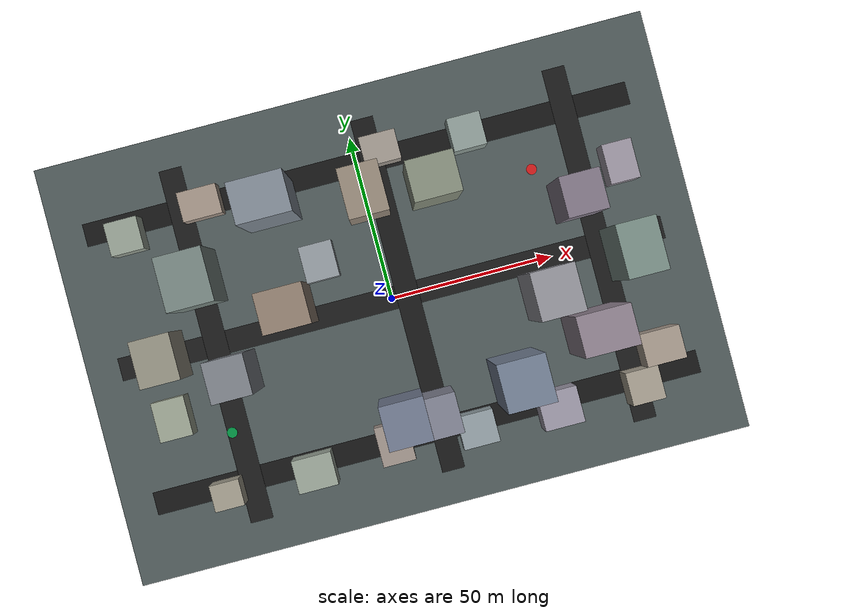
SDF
<?xml version="1.0" ?>
<sdf version="1.9">
  <world name="generated_city">
    <plugin filename="gz-sim-physics-system" name="gz::sim::systems::Physics"/>
    <plugin filename="gz-sim-user-commands-system" name="gz::sim::systems::UserCommands"/>
    <plugin filename="gz-sim-scene-broadcaster-system" name="gz::sim::systems::SceneBroadcaster"/>
    <plugin filename="gz-sim-contact-system" name="gz::sim::systems::Contact"/>
    <plugin filename="gz-sim-imu-system" name="gz::sim::systems::Imu"/>
    <plugin filename="gz-sim-air-pressure-system" name="gz::sim::systems::AirPressure"/>
    <plugin filename="gz-sim-air-speed-system" name="gz::sim::systems::AirSpeed"/>
    <plugin filename="gz-sim-apply-link-wrench-system" name="gz::sim::systems::ApplyLinkWrench"/>
    <plugin filename="gz-sim-navsat-system" name="gz::sim::systems::NavSat"/>
    <plugin filename="gz-sim-magnetometer-system" name="gz::sim::systems::Magnetometer"/>
    <plugin filename="gz-sim-sensors-system" name="gz::sim::systems::Sensors">
      <render_engine>ogre2</render_engine>
    </plugin>

    <physics type="ode">
      <max_step_size>0.004</max_step_size>
      <real_time_factor>1.0</real_time_factor>
      <real_time_update_rate>250</real_time_update_rate>
    </physics>
    <gravity>0 0 -9.8</gravity>
    <magnetic_field>6e-06 2.3e-05 -4.2e-05</magnetic_field>
    <atmosphere type="adiabatic"/>
    <spherical_coordinates>
      <surface_model>EARTH_WGS84</surface_model>
      <world_frame_orientation>ENU</world_frame_orientation>
      <latitude_deg>47.397971057728974</latitude_deg>
      <longitude_deg>8.546163739800146</longitude_deg>
      <elevation>0</elevation>
    </spherical_coordinates>

    <scene>
      <ambient>0.55 0.58 0.62 1</ambient>
      <background>0.72 0.80 0.92 1</background>
      <shadows>true</shadows>
    </scene>

    <light name="sun" type="directional">
      <cast_shadows>true</cast_shadows>
      <pose>0 0 80 0 0 0</pose>
      <diffuse>0.9 0.86 0.78 1</diffuse>
      <specular>0.25 0.25 0.25 1</specular>
      <direction>-0.5 0.2 -1</direction>
    </light>

    <model name="ground">
      <static>true</static>
      <link name="ground_link">
        <collision name="collision">
          <geometry>
            <box>
              <size>190 130 0.1</size>
            </box>
          </geometry>
        </collision>
        <visual name="visual">
          <geometry>
            <box>
              <size>190 130 0.1</size>
            </box>
          </geometry>
          <material>
            <diffuse>0.30 0.34 0.34 1</diffuse>
          </material>
        </visual>
      </link>
    </model>

    <model name="south_road">
      <static>true</static>
      <pose>0 -42 0.04 0 0 0</pose>
      <link name="road_link">
        <visual name="visual">
          <geometry><box><size>170 7 0.04</size></box></geometry>
          <material><diffuse>0.08 0.08 0.08 1</diffuse></material>
        </visual>
      </link>
    </model>

    <model name="central_road">
      <static>true</static>
      <pose>0 0 0.04 0 0 0</pose>
      <link name="road_link">
        <visual name="visual">
          <geometry><box><size>170 7 0.04</size></box></geometry>
          <material><diffuse>0.10 0.10 0.10 1</diffuse></material>
        </visual>
      </link>
    </model>

    <model name="north_road">
      <static>true</static>
      <pose>0 42 0.04 0 0 0</pose>
      <link name="road_link">
        <visual name="visual">
          <geometry><box><size>170 7 0.04</size></box></geometry>
          <material><diffuse>0.08 0.08 0.08 1</diffuse></material>
        </visual>
      </link>
    </model>

    <model name="west_road">
      <static>true</static>
      <pose>-55 0 0.05 0 0 0</pose>
      <link name="road_link">
        <visual name="visual">
          <geometry><box><size>7 110 0.04</size></box></geometry>
          <material><diffuse>0.10 0.10 0.10 1</diffuse></material>
        </visual>
      </link>
    </model>

    <model name="mid_road">
      <static>true</static>
      <pose>5 0 0.05 0 0 0</pose>
      <link name="road_link">
        <visual name="visual">
          <geometry><box><size>7 110 0.04</size></box></geometry>
          <material><diffuse>0.09 0.09 0.09 1</diffuse></material>
        </visual>
      </link>
    </model>

    <model name="east_road">
      <static>true</static>
      <pose>65 0 0.05 0 0 0</pose>
      <link name="road_link">
        <visual name="visual">
          <geometry><box><size>7 110 0.04</size></box></geometry>
          <material><diffuse>0.10 0.10 0.10 1</diffuse></material>
        </visual>
      </link>
    </model>

    <model name="building_high_01">
      <static>true</static>
      <pose>-50 -10 14 0 0 0</pose>
      <link name="link">
        <collision name="collision"><geometry><box><size>12 12 28</size></box></geometry></collision>
        <visual name="visual"><geometry><box><size>12 12 28</size></box></geometry><material><diffuse>0.48 0.50 0.53 1</diffuse></material></visual>
      </link>
    </model>

    <model name="building_high_02">
      <static>true</static>
      <pose>-30 5 15 0 0 0</pose>
      <link name="link">
        <collision name="collision"><geometry><box><size>14 12 30</size></box></geometry></collision>
        <visual name="visual"><geometry><box><size>14 12 30</size></box></geometry><material><diffuse>0.56 0.49 0.43 1</diffuse></material></visual>
      </link>
    </model>

    <model name="building_high_03">
      <static>true</static>
      <pose>-5 -35 13 0 0 0</pose>
      <link name="link">
        <collision name="collision"><geometry><box><size>13 13 26</size></box></geometry></collision>
        <visual name="visual"><geometry><box><size>13 13 26</size></box></geometry><material><diffuse>0.43 0.47 0.55 1</diffuse></material></visual>
      </link>
    </model>

    <model name="building_high_04">
      <static>true</static>
      <pose>20 30 14 0 0 0</pose>
      <link name="link">
        <collision name="collision"><geometry><box><size>14 12 28</size></box></geometry></collision>
        <visual name="visual"><geometry><box><size>14 12 28</size></box></geometry><material><diffuse>0.52 0.55 0.48 1</diffuse></material></visual>
      </link>
    </model>

    <model name="building_high_05">
      <static>true</static>
      <pose>45 -10 15 0 0 0</pose>
      <link name="link">
        <collision name="collision"><geometry><box><size>13 14 30</size></box></geometry></collision>
        <visual name="visual"><geometry><box><size>13 14 30</size></box></geometry><material><diffuse>0.57 0.57 0.60 1</diffuse></material></visual>
      </link>
    </model>

    <model name="building_high_06">
      <static>true</static>
      <pose>60 15 12 0 0 0</pose>
      <link name="link">
        <collision name="collision"><geometry><box><size>12 12 24</size></box></geometry></collision>
        <visual name="visual"><geometry><box><size>12 12 24</size></box></geometry><material><diffuse>0.50 0.46 0.52 1</diffuse></material></visual>
      </link>
    </model>

    <model name="building_high_07">
      <static>true</static>
      <pose>-55 20 13 0 0 0</pose>
      <link name="link">
        <collision name="collision"><geometry><box><size>14 16 26</size></box></geometry></collision>
        <visual name="visual"><geometry><box><size>14 16 26</size></box></geometry><material><diffuse>0.46 0.52 0.50 1</diffuse></material></visual>
      </link>
    </model>

    <model name="building_high_08">
      <static>true</static>
      <pose>-28 36 17 0 0 0</pose>
      <link name="link">
        <collision name="collision"><geometry><box><size>16 12 34</size></box></geometry></collision>
        <visual name="visual"><geometry><box><size>16 12 34</size></box></geometry><material><diffuse>0.50 0.54 0.58 1</diffuse></material></visual>
      </link>
    </model>

    <model name="building_high_09">
      <static>true</static>
      <pose>0 32 11 0 0 0</pose>
      <link name="link">
        <collision name="collision"><geometry><box><size>12 15 22</size></box></geometry></collision>
        <visual name="visual"><geometry><box><size>12 15 22</size></box></geometry><material><diffuse>0.58 0.53 0.47 1</diffuse></material></visual>
      </link>
    </model>

    <model name="building_high_10">
      <static>true</static>
      <pose>30 -32 16 0 0 0</pose>
      <link name="link">
        <collision name="collision"><geometry><box><size>14 14 32</size></box></geometry></collision>
        <visual name="visual"><geometry><box><size>14 14 32</size></box></geometry><material><diffuse>0.44 0.49 0.57 1</diffuse></material></visual>
      </link>
    </model>

    <model name="building_high_11">
      <static>true</static>
      <pose>56 -24 14 0 0 0</pose>
      <link name="link">
        <collision name="collision"><geometry><box><size>16 12 28</size></box></geometry></collision>
        <visual name="visual"><geometry><box><size>16 12 28</size></box></geometry><material><diffuse>0.55 0.50 0.55 1</diffuse></material></visual>
      </link>
    </model>

    <model name="building_high_12">
      <static>true</static>
      <pose>72 -4 12 0 0 0</pose>
      <link name="link">
        <collision name="collision"><geometry><box><size>12 16 24</size></box></geometry></collision>
        <visual name="visual"><geometry><box><size>12 16 24</size></box></geometry><material><diffuse>0.47 0.55 0.52 1</diffuse></material></visual>
      </link>
    </model>

    <model name="building_high_13">
      <static>true</static>
      <pose>-70 0 10 0 0 0</pose>
      <link name="link">
        <collision name="collision"><geometry><box><size>12 14 20</size></box></geometry></collision>
        <visual name="visual"><geometry><box><size>12 14 20</size></box></geometry><material><diffuse>0.57 0.56 0.50 1</diffuse></material></visual>
      </link>
    </model>

    <model name="building_high_14">
      <static>true</static>
      <pose>4 -36 11 0 0 0</pose>
      <link name="link">
        <collision name="collision"><geometry><box><size>13 12 22</size></box></geometry></collision>
        <visual name="visual"><geometry><box><size>13 12 22</size></box></geometry><material><diffuse>0.49 0.50 0.56 1</diffuse></material></visual>
      </link>
    </model>

    <model name="building_low_01">
      <static>true</static>
      <pose>-62 -44 4 0 0 0</pose>
      <link name="link">
        <collision name="collision"><geometry><box><size>9 8 8</size></box></geometry></collision>
        <visual name="visual"><geometry><box><size>9 8 8</size></box></geometry><material><diffuse>0.62 0.60 0.54 1</diffuse></material></visual>
      </link>
    </model>

    <model name="building_low_02">
      <static>true</static>
      <pose>-35 -44 4.5 0 0 0</pose>
      <link name="link">
        <collision name="collision"><geometry><box><size>12 10 9</size></box></geometry></collision>
        <visual name="visual"><geometry><box><size>12 10 9</size></box></geometry><material><diffuse>0.59 0.63 0.58 1</diffuse></material></visual>
      </link>
    </model>

    <model name="building_low_03">
      <static>true</static>
      <pose>-10 -42 3.5 0 0 0</pose>
      <link name="link">
        <collision name="collision"><geometry><box><size>10 12 7</size></box></geometry></collision>
        <visual name="visual"><geometry><box><size>10 12 7</size></box></geometry><material><diffuse>0.61 0.56 0.53 1</diffuse></material></visual>
      </link>
    </model>

    <model name="building_low_04">
      <static>true</static>
      <pose>15 -44 4 0 0 0</pose>
      <link name="link">
        <collision name="collision"><geometry><box><size>11 10 8</size></box></geometry></collision>
        <visual name="visual"><geometry><box><size>11 10 8</size></box></geometry><material><diffuse>0.56 0.61 0.63 1</diffuse></material></visual>
      </link>
    </model>

    <model name="building_low_05">
      <static>true</static>
      <pose>40 -44 5 0 0 0</pose>
      <link name="link">
        <collision name="collision"><geometry><box><size>12 11 10</size></box></geometry></collision>
        <visual name="visual"><geometry><box><size>12 11 10</size></box></geometry><material><diffuse>0.60 0.58 0.64 1</diffuse></material></visual>
      </link>
    </model>

    <model name="building_low_06">
      <static>true</static>
      <pose>66 -44 4.5 0 0 0</pose>
      <link name="link">
        <collision name="collision"><geometry><box><size>10 10 9</size></box></geometry></collision>
        <visual name="visual"><geometry><box><size>10 10 9</size></box></geometry><material><diffuse>0.64 0.61 0.55 1</diffuse></material></visual>
      </link>
    </model>

    <model name="building_low_07">
      <static>true</static>
      <pose>-72 38 4 0 0 0</pose>
      <link name="link">
        <collision name="collision"><geometry><box><size>10 10 8</size></box></geometry></collision>
        <visual name="visual"><geometry><box><size>10 10 8</size></box></geometry><material><diffuse>0.58 0.62 0.57 1</diffuse></material></visual>
      </link>
    </model>

    <model name="building_low_08">
      <static>true</static>
      <pose>-48 42 3.5 0 0 0</pose>
      <link name="link">
        <collision name="collision"><geometry><box><size>12 9 7</size></box></geometry></collision>
        <visual name="visual"><geometry><box><size>12 9 7</size></box></geometry><material><diffuse>0.63 0.57 0.52 1</diffuse></material></visual>
      </link>
    </model>

    <model name="building_low_09">
      <static>true</static>
      <pose>-18 16 4.5 0 0 0</pose>
      <link name="link">
        <collision name="collision"><geometry><box><size>10 11 9</size></box></geometry></collision>
        <visual name="visual"><geometry><box><size>10 11 9</size></box></geometry><material><diffuse>0.57 0.60 0.62 1</diffuse></material></visual>
      </link>
    </model>

    <model name="building_low_10">
      <static>true</static>
      <pose>8 44 4 0 0 0</pose>
      <link name="link">
        <collision name="collision"><geometry><box><size>11 9 8</size></box></geometry></collision>
        <visual name="visual"><geometry><box><size>11 9 8</size></box></geometry><material><diffuse>0.62 0.59 0.55 1</diffuse></material></visual>
      </link>
    </model>

    <model name="building_low_11">
      <static>true</static>
      <pose>34 42 4.5 0 0 0</pose>
      <link name="link">
        <collision name="collision"><geometry><box><size>10 10 9</size></box></geometry></collision>
        <visual name="visual"><geometry><box><size>10 10 9</size></box></geometry><material><diffuse>0.55 0.61 0.59 1</diffuse></material></visual>
      </link>
    </model>

    <model name="building_low_12">
      <static>true</static>
      <pose>76 22 4 0 0 0</pose>
      <link name="link">
        <collision name="collision"><geometry><box><size>9 12 8</size></box></geometry></collision>
        <visual name="visual"><geometry><box><size>9 12 8</size></box></geometry><material><diffuse>0.61 0.58 0.63 1</diffuse></material></visual>
      </link>
    </model>

    <model name="building_low_13">
      <static>true</static>
      <pose>-72 -18 4 0 0 0</pose>
      <link name="link">
        <collision name="collision"><geometry><box><size>10 12 8</size></box></geometry></collision>
        <visual name="visual"><geometry><box><size>10 12 8</size></box></geometry><material><diffuse>0.60 0.63 0.56 1</diffuse></material></visual>
      </link>
    </model>

    <model name="building_low_14">
      <static>true</static>
      <pose>74 -34 4.5 0 0 0</pose>
      <link name="link">
        <collision name="collision"><geometry><box><size>12 10 9</size></box></geometry></collision>
        <visual name="visual"><geometry><box><size>12 10 9</size></box></geometry><material><diffuse>0.64 0.59 0.54 1</diffuse></material></visual>
      </link>
    </model>

    <model name="start_marker">
      <static>true</static>
      <pose>-57 -27 0.05 0 0 0</pose>
      <link name="link">
        <visual name="visual">
          <geometry><cylinder><radius>1.6</radius><length>0.08</length></cylinder></geometry>
          <material><diffuse>0.0 0.55 0.25 1</diffuse></material>
        </visual>
      </link>
    </model>

    <model name="goal_marker">
      <static>true</static>
      <pose>51 27 0.05 0 0 0</pose>
      <link name="link">
        <visual name="visual">
          <geometry><cylinder><radius>1.6</radius><length>0.08</length></cylinder></geometry>
          <material><diffuse>0.8 0.1 0.1 1</diffuse></material>
        </visual>
      </link>
    </model>
  </world>
</sdf>
